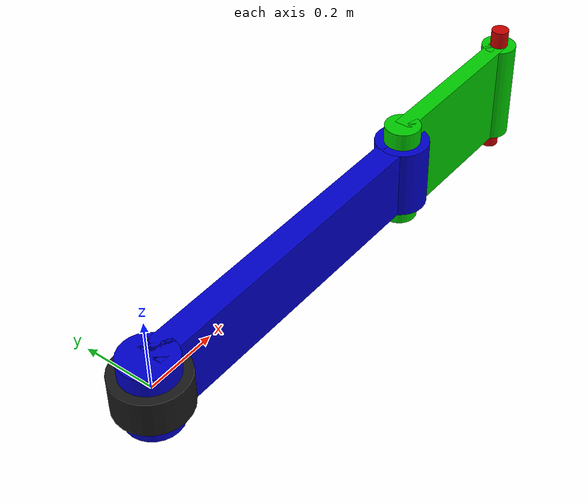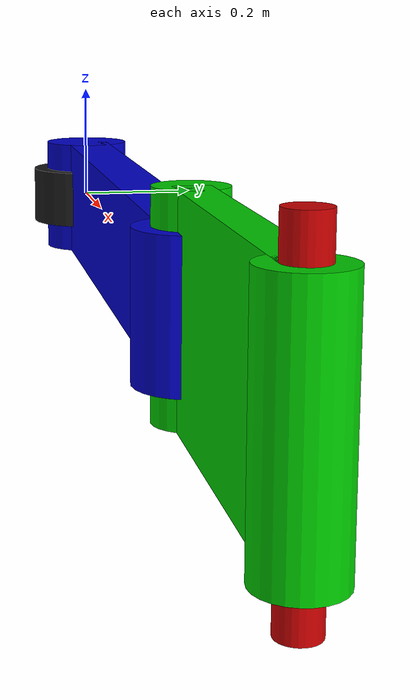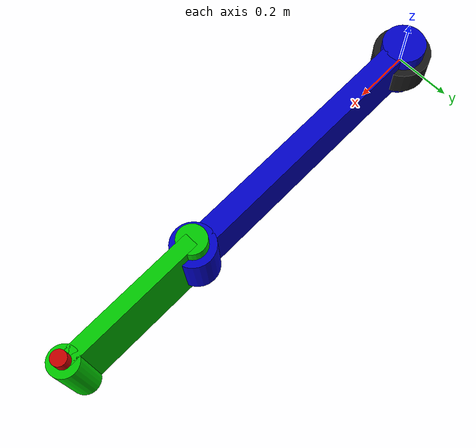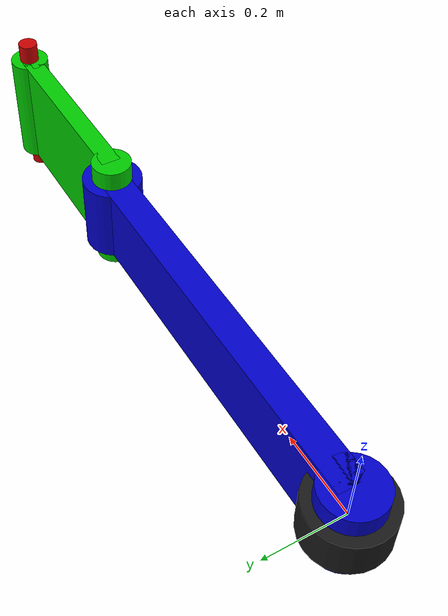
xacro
<?xml version="1.0"?>
<robot xmlns:xacro="http://wiki.ros.org/xacro" name="Simple2DoFManipulator">

  <xacro:property name="link1_length" value="1.0" />
  <xacro:property name="link2_length" value="0.5" />

  <link name="Root">
    <visual>
      <geometry>
        <cylinder length="0.1" radius="0.1"/>
      </geometry>
      <material name="">
        <color rgba="0.1 0.1 0.1 1"/>
      </material>
    </visual>
  </link>

  <joint name="Joint1" type="revolute">
    <parent link="Root"/>
    <child link="Link1"/>
    <origin xyz="0 0 0" rpy="0 0 0"/>
    <axis xyz="0 0 1"/>
    <limit lower="0.0" upper="${pi/2}" effort="1e6" velocity="1e6"/>
  </joint>
  <link name="Link1">
    <visual>
      <geometry>
        <cylinder length="0.2" radius="0.075"/>
      </geometry>
      <material name="">
        <color rgba="0 0 0.8 1"/>
      </material>
    </visual>
    <visual>
      <origin xyz="${link1_length/2} 0 0" rpy="0 0 0"/>
      <geometry>
        <box size="${link1_length} 0.075 0.2"/>
      </geometry>
      <material name="">
        <color rgba="0 0 0.8 1"/>
      </material>
    </visual>
    <visual>
      <origin xyz="${link1_length} 0 0" rpy="0 0 0"/>
      <geometry>
        <cylinder length="0.2" radius="0.075"/>
      </geometry>
      <material name="">
        <color rgba="0 0 0.8 1"/>
      </material>
    </visual>
  </link>

  <joint name="Joint2" type="revolute">
    <parent link="Link1"/>
    <child link="Link2"/>
    <origin xyz="${link1_length} 0 0" rpy="0 0 0"/>
    <axis xyz="0 0 1"/>
    <limit lower="0.0" upper="${pi}" effort="1e6" velocity="1e6"/>
  </joint>
  <link name="Link2">
    <visual>
      <geometry>
        <cylinder length="0.3" radius="0.05"/>
      </geometry>
      <material name="">
        <color rgba="0 0.8 0 1"/>
      </material>
    </visual>
    <visual>
      <origin xyz="${link2_length/2} 0 0" rpy="0 0 0"/>
      <geometry>
        <box size="${link2_length} 0.05 0.3"/>
      </geometry>
      <material name="">
        <color rgba="0 0.8 0 1"/>
      </material>
    </visual>
    <visual>
      <origin xyz="${link2_length} 0 0" rpy="0 0 0"/>
      <geometry>
        <cylinder length="0.3" radius="0.05"/>
      </geometry>
      <material name="">
        <color rgba="0 0.8 0 1"/>
      </material>
    </visual>
  </link>

  <joint name="EEF" type="fixed">
    <parent link="Link2"/>
    <child link="EEF"/>
    <origin xyz="${link2_length} 0 0" rpy="0 0 0"/>
  </joint>
  <link name="EEF">
    <visual>
      <geometry>
        <cylinder length="0.4" radius="0.025"/>
      </geometry>
      <material name="">
        <color rgba="0.8 0 0 1"/>
      </material>
    </visual>
  </link>
</robot>
